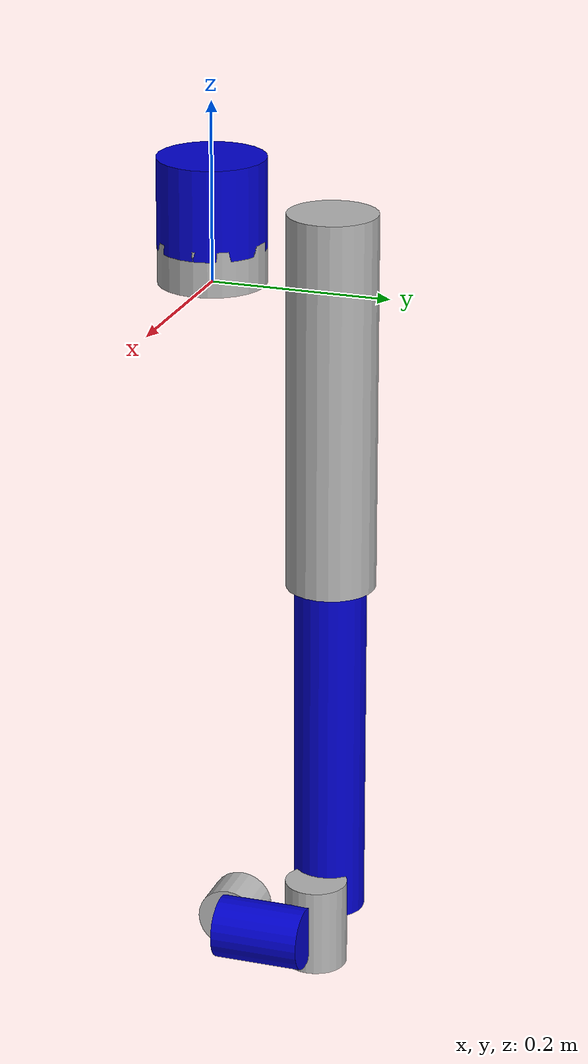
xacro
<?xml version="1.0"?>
<robot xmlns:xacro="http://www.ros.org/wiki/xacro" name="ur5">
  <!-- Common properties -->

  <!-- UR5 specific properties -->
  <xacro:property name="shoulder_height" value="0.089159" />
  <xacro:property name="shoulder_offset" value="0.13585" />
  <xacro:property name="upper_arm_length" value="0.425" />
  <xacro:property name="forearm_length" value="0.39225" />
  <xacro:property name="wrist_1_length" value="0.09465" />
  <xacro:property name="wrist_2_length" value="0.09465" />
  <xacro:property name="wrist_3_length" value="0.0823" />

  <!-- Materials -->
  <material name="ur_grey">
    <color rgba="0.7 0.7 0.7 1.0"/>
  </material>

  <material name="ur_blue">
    <color rgba="0.0 0.0 0.8 1.0"/>
  </material>

  <!-- Base Link -->
  <link name="base_link">
    <visual>
      <geometry>
        <cylinder length="0.05" radius="0.06"/>
      </geometry>
      <origin rpy="0 0 0" xyz="0 0 0.025"/>
      <material name="ur_grey"/>
    </visual>
    <collision>
      <geometry>
        <cylinder length="0.05" radius="0.06"/>
      </geometry>
      <origin rpy="0 0 0" xyz="0 0 0.025"/>
    </collision>
    <inertial>
      <mass value="4.0"/>
      <origin rpy="0 0 0" xyz="0 0 0"/>
      <inertia ixx="0.00443333156" ixy="0.0" ixz="0.0" iyy="0.00443333156" iyz="0.0" izz="0.0072"/>
    </inertial>
  </link>

  <!-- Shoulder Link -->
  <joint name="shoulder_pan_joint" type="revolute">
    <parent link="base_link"/>
    <child link="shoulder_link"/>
    <origin rpy="0 0 0" xyz="0 0 ${shoulder_height}"/>
    <axis xyz="0 0 1"/>
    <limit effort="150.0" lower="${-2*pi}" upper="${2*pi}" velocity="3.15"/>
    <dynamics damping="0.0" friction="0.0"/>
  </joint>

  <link name="shoulder_link">
    <visual>
      <geometry>
        <cylinder length="0.1" radius="0.06"/>
      </geometry>
      <origin rpy="0 0 0" xyz="0 0 0"/>
      <material name="ur_blue"/>
    </visual>
    <collision>
      <geometry>
        <cylinder length="0.1" radius="0.06"/>
      </geometry>
      <origin rpy="0 0 0" xyz="0 0 0"/>
    </collision>
    <inertial>
      <mass value="3.7"/>
      <origin rpy="0 0 0" xyz="0 0 0"/>
      <inertia ixx="0.010267495893" ixy="0.0" ixz="0.0" iyy="0.010267495893" iyz="0.0" izz="0.00666"/>
    </inertial>
  </link>

  <!-- Upper Arm Link -->
  <joint name="shoulder_lift_joint" type="revolute">
    <parent link="shoulder_link"/>
    <child link="upper_arm_link"/>
    <origin rpy="0 ${pi/2} 0" xyz="0 ${shoulder_offset} 0"/>
    <axis xyz="0 1 0"/>
    <limit effort="150.0" lower="${-2*pi}" upper="${2*pi}" velocity="3.15"/>
    <dynamics damping="0.0" friction="0.0"/>
  </joint>

  <link name="upper_arm_link">
    <visual>
      <geometry>
        <cylinder length="${upper_arm_length}" radius="0.05"/>
      </geometry>
      <origin rpy="0 ${pi/2} 0" xyz="${upper_arm_length/2} 0 0"/>
      <material name="ur_grey"/>
    </visual>
    <collision>
      <geometry>
        <cylinder length="${upper_arm_length}" radius="0.05"/>
      </geometry>
      <origin rpy="0 ${pi/2} 0" xyz="${upper_arm_length/2} 0 0"/>
    </collision>
    <inertial>
      <mass value="8.393"/>
      <origin rpy="0 0 0" xyz="${upper_arm_length/2} 0 0"/>
      <inertia ixx="0.22689067591" ixy="0.0" ixz="0.0" iyy="0.22689067591" iyz="0.0" izz="0.0151074"/>
    </inertial>
  </link>

  <!-- Forearm Link -->
  <joint name="elbow_joint" type="revolute">
    <parent link="upper_arm_link"/>
    <child link="forearm_link"/>
    <origin rpy="0 0 0" xyz="${upper_arm_length} 0 0"/>
    <axis xyz="0 1 0"/>
    <limit effort="150.0" lower="${-2*pi}" upper="${2*pi}" velocity="3.15"/>
    <dynamics damping="0.0" friction="0.0"/>
  </joint>

  <link name="forearm_link">
    <visual>
      <geometry>
        <cylinder length="${forearm_length}" radius="0.04"/>
      </geometry>
      <origin rpy="0 ${pi/2} 0" xyz="${forearm_length/2} 0 0"/>
      <material name="ur_blue"/>
    </visual>
    <collision>
      <geometry>
        <cylinder length="${forearm_length}" radius="0.04"/>
      </geometry>
      <origin rpy="0 ${pi/2} 0" xyz="${forearm_length/2} 0 0"/>
    </collision>
    <inertial>
      <mass value="2.275"/>
      <origin rpy="0 0 0" xyz="${forearm_length/2} 0 0"/>
      <inertia ixx="0.049443313556" ixy="0.0" ixz="0.0" iyy="0.049443313556" iyz="0.0" izz="0.00364"/>
    </inertial>
  </link>

  <!-- Wrist 1 Link -->
  <joint name="wrist_1_joint" type="revolute">
    <parent link="forearm_link"/>
    <child link="wrist_1_link"/>
    <origin rpy="0 0 0" xyz="${forearm_length} 0 0"/>
    <axis xyz="0 1 0"/>
    <limit effort="28.0" lower="${-2*pi}" upper="${2*pi}" velocity="3.2"/>
    <dynamics damping="0.0" friction="0.0"/>
  </joint>

  <link name="wrist_1_link">
    <visual>
      <geometry>
        <cylinder length="0.1" radius="0.035"/>
      </geometry>
      <origin rpy="0 ${pi/2} 0" xyz="0 0 ${wrist_1_length/2}"/>
      <material name="ur_grey"/>
    </visual>
    <collision>
      <geometry>
        <cylinder length="0.1" radius="0.035"/>
      </geometry>
      <origin rpy="0 ${pi/2} 0" xyz="0 0 ${wrist_1_length/2}"/>
    </collision>
    <inertial>
      <mass value="1.219"/>
      <origin rpy="0 0 0" xyz="0 0 ${wrist_1_length/2}"/>
      <inertia ixx="0.111172755531" ixy="0.0" ixz="0.0" iyy="0.111172755531" iyz="0.0" izz="0.21942"/>
    </inertial>
  </link>

  <!-- Wrist 2 Link -->
  <joint name="wrist_2_joint" type="revolute">
    <parent link="wrist_1_link"/>
    <child link="wrist_2_link"/>
    <origin rpy="0 0 0" xyz="0 0 ${wrist_1_length}"/>
    <axis xyz="0 0 1"/>
    <limit effort="28.0" lower="${-2*pi}" upper="${2*pi}" velocity="3.2"/>
    <dynamics damping="0.0" friction="0.0"/>
  </joint>

  <link name="wrist_2_link">
    <visual>
      <geometry>
        <cylinder length="0.1" radius="0.035"/>
      </geometry>
      <origin rpy="${pi/2} 0 0" xyz="0 ${-wrist_2_length/2} 0"/>
      <material name="ur_blue"/>
    </visual>
    <collision>
      <geometry>
        <cylinder length="0.1" radius="0.035"/>
      </geometry>
      <origin rpy="${pi/2} 0 0" xyz="0 ${-wrist_2_length/2} 0"/>
    </collision>
    <inertial>
      <mass value="1.219"/>
      <origin rpy="0 0 0" xyz="0 ${-wrist_2_length/2} 0"/>
      <inertia ixx="0.111172755531" ixy="0.0" ixz="0.0" iyy="0.111172755531" iyz="0.0" izz="0.21942"/>
    </inertial>
  </link>

  <!-- Wrist 3 Link -->
  <joint name="wrist_3_joint" type="revolute">
    <parent link="wrist_2_link"/>
    <child link="wrist_3_link"/>
    <origin rpy="0 0 0" xyz="0 ${-wrist_2_length} 0"/>
    <axis xyz="0 1 0"/>
    <limit effort="28.0" lower="${-2*pi}" upper="${2*pi}" velocity="3.2"/>
    <dynamics damping="0.0" friction="0.0"/>
  </joint>

  <link name="wrist_3_link">
    <visual>
      <geometry>
        <cylinder length="0.05" radius="0.035"/>
      </geometry>
      <origin rpy="0 0 0" xyz="0 0 ${-wrist_3_length/2}"/>
      <material name="ur_grey"/>
    </visual>
    <collision>
      <geometry>
        <cylinder length="0.05" radius="0.035"/>
      </geometry>
      <origin rpy="0 0 0" xyz="0 0 ${-wrist_3_length/2}"/>
    </collision>
    <inertial>
      <mass value="0.1879"/>
      <origin rpy="0 0 0" xyz="0 0 ${-wrist_3_length/2}"/>
      <inertia ixx="0.0171364731454" ixy="0.0" ixz="0.0" iyy="0.0171364731454" iyz="0.0" izz="0.033822"/>
    </inertial>
  </link>

  <!-- End Effector Link -->
  <joint name="ee_fixed_joint" type="fixed">
    <parent link="wrist_3_link"/>
    <child link="ee_link"/>
    <origin rpy="0 0 0" xyz="0 0 ${-wrist_3_length}"/>
  </joint>

  <link name="ee_link">
    <visual>
      <geometry>
        <box size="0.01 0.01 0.01"/>
      </geometry>
      <origin rpy="0 0 0" xyz="0 0 0"/>
      <material name="ur_blue"/>
    </visual>
    <collision>
      <geometry>
        <box size="0.01 0.01 0.01"/>
      </geometry>
      <origin rpy="0 0 0" xyz="0 0 0"/>
    </collision>
    <inertial>
      <mass value="0.001"/>
      <origin rpy="0 0 0" xyz="0 0 0"/>
      <inertia ixx="0.0001" ixy="0.0" ixz="0.0" iyy="0.0001" iyz="0.0" izz="0.0001"/>
    </inertial>
  </link>

  <!-- Tool0 Link -->
  <joint name="tool0_joint" type="fixed">
    <parent link="ee_link"/>
    <child link="tool0"/>
    <origin rpy="0 0 0" xyz="0 0 0"/>
  </joint>

  <link name="tool0">
    <visual>
      <geometry>
        <box size="0.01 0.01 0.01"/>
      </geometry>
      <origin rpy="0 0 0" xyz="0 0 0"/>
      <material name="ur_grey"/>
    </visual>
    <collision>
      <geometry>
        <box size="0.01 0.01 0.01"/>
      </geometry>
      <origin rpy="0 0 0" xyz="0 0 0"/>
    </collision>
    <inertial>
      <mass value="0.001"/>
      <origin rpy="0 0 0" xyz="0 0 0"/>
      <inertia ixx="0.0001" ixy="0.0" ixz="0.0" iyy="0.0001" iyz="0.0" izz="0.0001"/>
    </inertial>
  </link>

  <!-- Transmissions for ROS Control -->
  <transmission name="shoulder_pan_trans">
    <type>transmission_interface/SimpleTransmission</type>
    <joint name="shoulder_pan_joint">
      <hardwareInterface>hardware_interface/PositionJointInterface</hardwareInterface>
    </joint>
    <actuator name="shoulder_pan_motor">
      <mechanicalReduction>1</mechanicalReduction>
    </actuator>
  </transmission>

  <transmission name="shoulder_lift_trans">
    <type>transmission_interface/SimpleTransmission</type>
    <joint name="shoulder_lift_joint">
      <hardwareInterface>hardware_interface/PositionJointInterface</hardwareInterface>
    </joint>
    <actuator name="shoulder_lift_motor">
      <mechanicalReduction>1</mechanicalReduction>
    </actuator>
  </transmission>

  <transmission name="elbow_trans">
    <type>transmission_interface/SimpleTransmission</type>
    <joint name="elbow_joint">
      <hardwareInterface>hardware_interface/PositionJointInterface</hardwareInterface>
    </joint>
    <actuator name="elbow_motor">
      <mechanicalReduction>1</mechanicalReduction>
    </actuator>
  </transmission>

  <transmission name="wrist_1_trans">
    <type>transmission_interface/SimpleTransmission</type>
    <joint name="wrist_1_joint">
      <hardwareInterface>hardware_interface/PositionJointInterface</hardwareInterface>
    </joint>
    <actuator name="wrist_1_motor">
      <mechanicalReduction>1</mechanicalReduction>
    </actuator>
  </transmission>

  <transmission name="wrist_2_trans">
    <type>transmission_interface/SimpleTransmission</type>
    <joint name="wrist_2_joint">
      <hardwareInterface>hardware_interface/PositionJointInterface</hardwareInterface>
    </joint>
    <actuator name="wrist_2_motor">
      <mechanicalReduction>1</mechanicalReduction>
    </actuator>
  </transmission>

  <transmission name="wrist_3_trans">
    <type>transmission_interface/SimpleTransmission</type>
    <joint name="wrist_3_joint">
      <hardwareInterface>hardware_interface/PositionJointInterface</hardwareInterface>
    </joint>
    <actuator name="wrist_3_motor">
      <mechanicalReduction>1</mechanicalReduction>
    </actuator>
  </transmission>

  <!-- Gazebo specific elements -->
  <gazebo>
    <plugin name="gazebo_ros_control" filename="libgazebo_ros_control.so">
      <robotNamespace>/ur5</robotNamespace>
    </plugin>
  </gazebo>

  <!-- Define colors for Gazebo -->
  <gazebo reference="base_link">
    <material>Gazebo/Grey</material>
  </gazebo>

  <gazebo reference="shoulder_link">
    <material>Gazebo/Blue</material>
  </gazebo>

  <gazebo reference="upper_arm_link">
    <material>Gazebo/Grey</material>
  </gazebo>

  <gazebo reference="forearm_link">
    <material>Gazebo/Blue</material>
  </gazebo>

  <gazebo reference="wrist_1_link">
    <material>Gazebo/Grey</material>
  </gazebo>

  <gazebo reference="wrist_2_link">
    <material>Gazebo/Blue</material>
  </gazebo>

  <gazebo reference="wrist_3_link">
    <material>Gazebo/Grey</material>
  </gazebo>

  <gazebo reference="ee_link">
    <material>Gazebo/Blue</material>
  </gazebo>

  <gazebo reference="tool0">
    <material>Gazebo/Grey</material>
  </gazebo>
</robot>
